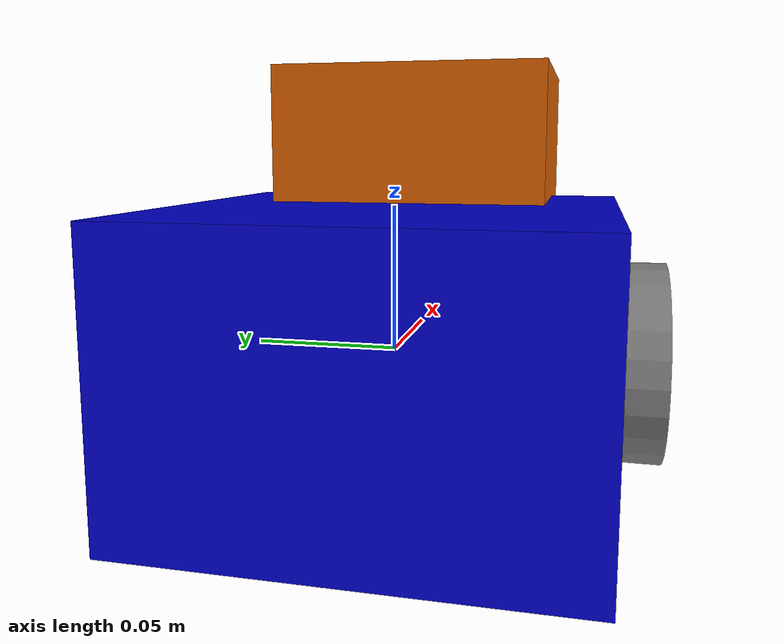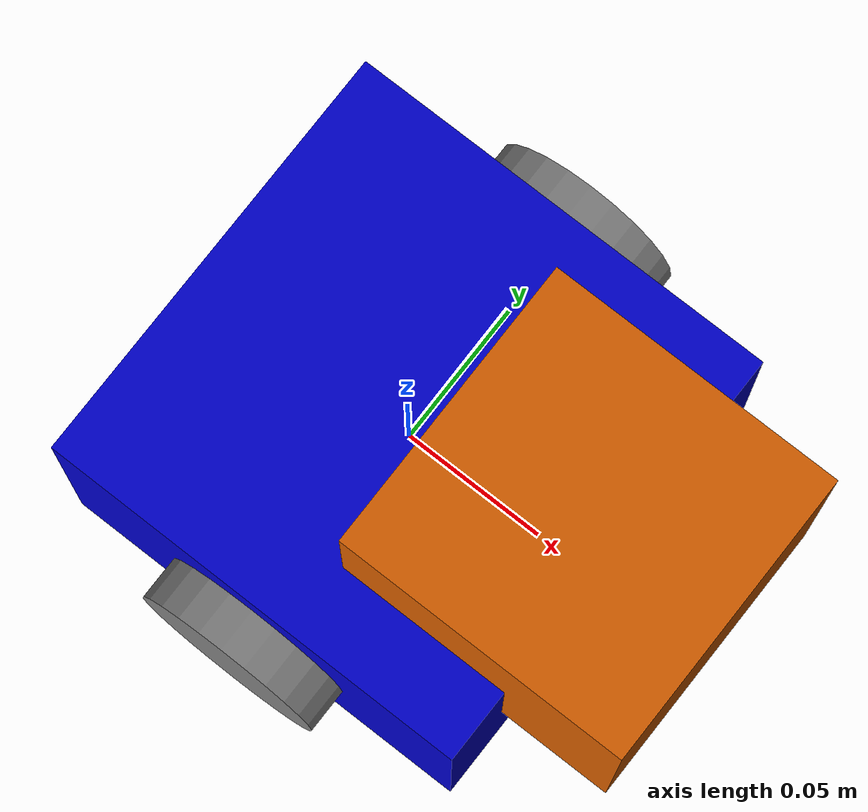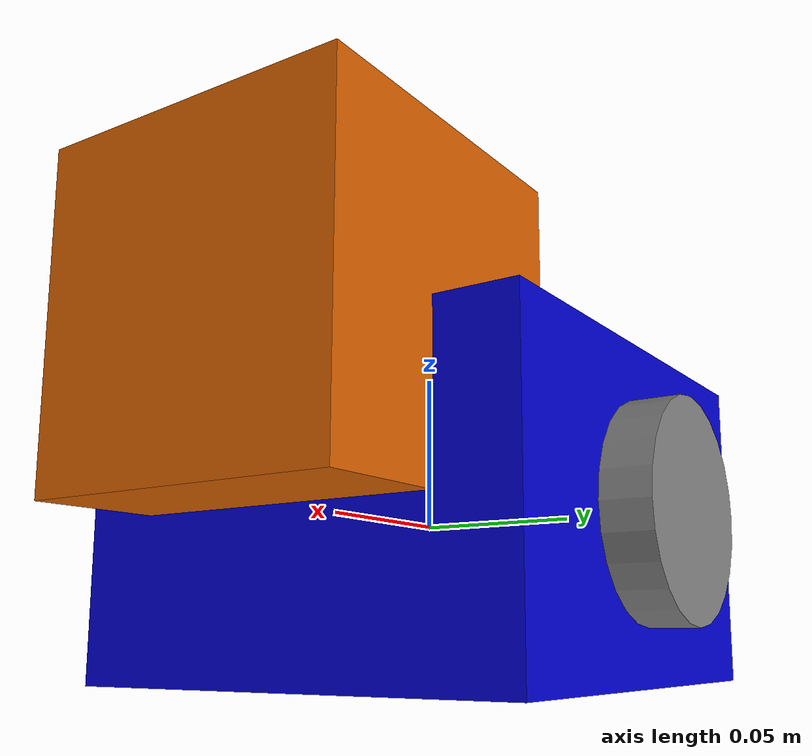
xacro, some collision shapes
<?xml version="1.0" ?>
<robot name="jetbot" xmlns:xacro="http://www.ros.org/wiki/xacro">

  <!-- Constants -->
  <xacro:property name="M_PI" value="3.1415926535897931" />
  <xacro:property name="wheel_radius" value="0.033" />
  <xacro:property name="wheel_width" value="0.02" />
  <xacro:property name="wheel_separation" value="0.16" />
  <xacro:property name="base_length" value="0.15" />
  <xacro:property name="base_width" value="0.15" />
  <xacro:property name="base_height" value="0.1" />

  <!-- Base Link -->
  <link name="base_link">
    <visual>
      <geometry>
        <box size="${base_length} ${base_width} ${base_height}"/>
      </geometry>
      <material name="blue">
        <color rgba="0 0 0.8 1"/>
      </material>
    </visual>
    <collision>
      <geometry>
        <box size="${base_length} ${base_width} ${base_height}"/>
      </geometry>
    </collision>
    <inertial>
      <mass value="1.0" />
      <inertia ixx="0.01" ixy="0.0" ixz="0.0" iyy="0.01" iyz="0.0" izz="0.01" />
    </inertial>
  </link>

  <!-- Camera Mount -->
  <joint name="camera_mount_joint" type="fixed">
    <parent link="base_link"/>
    <child link="camera_link"/>
    <origin xyz="${base_length/2 - 0.01} 0 ${base_height/2}" rpy="0 0 0"/>
  </joint>

  <link name="camera_link">
    <visual>
      <geometry>
        <box size="0.02 0.03 0.03"/>
      </geometry>
      <material name="black">
        <color rgba="0 0 0 1"/>
      </material>
    </visual>
  </link>

  <!-- Wheels -->
  <xacro:macro name="wheel" params="prefix reflect">
    <joint name="${prefix}_wheel_joint" type="continuous">
      <parent link="base_link"/>
      <child link="${prefix}_wheel"/>
      <origin xyz="0 ${reflect*wheel_separation/2} 0" rpy="${-M_PI/2} 0 0"/>
      <axis xyz="0 0 1"/>
    </joint>

    <link name="${prefix}_wheel">
      <visual>
        <geometry>
          <cylinder radius="${wheel_radius}" length="${wheel_width}"/>
        </geometry>
        <material name="gray">
          <color rgba="0.5 0.5 0.5 1"/>
        </material>
      </visual>
      <collision>
        <geometry>
          <cylinder radius="${wheel_radius}" length="${wheel_width}"/>
        </geometry>
      </collision>
      <inertial>
        <mass value="0.1" />
        <inertia ixx="0.001" ixy="0.0" ixz="0.0" iyy="0.001" iyz="0.0" izz="0.001" />
      </inertial>
    </link>

    <!-- Gazebo plugin for wheel -->
    <gazebo reference="${prefix}_wheel">
      <mu1>1.0</mu1>
      <mu2>1.0</mu2>
      <kp>1000000.0</kp>
      <kd>100.0</kd>
      <material>Gazebo/Grey</material>
    </gazebo>
  </xacro:macro>

  <xacro:wheel prefix="left" reflect="1" />
  <xacro:wheel prefix="right" reflect="-1" />

  <!-- Camera Sensor -->
  <gazebo reference="camera_link">
    <sensor type="camera" name="camera_sensor">
      <update_rate>30.0</update_rate>
      <camera name="head">
        <horizontal_fov>1.3962634</horizontal_fov>
        <image>
          <width>640</width>
          <height>480</height>
          <format>R8G8B8</format>
        </image>
        <clip>
          <near>0.02</near>
          <far>300</far>
        </clip>
      </camera>
      <plugin name="camera_controller" filename="libgazebo_ros_camera.so">
        <frame_name>camera_link</frame_name>
        <min_depth>0.1</min_depth>
        <max_depth>10.0</max_depth>
      </plugin>
    </sensor>
  </gazebo>

  <!-- IMU Sensor -->
  <joint name="imu_joint" type="fixed">
    <parent link="base_link"/>
    <child link="imu_link"/>
    <origin xyz="0 0 0" rpy="0 0 0"/>
  </joint>

  <link name="imu_link"/>

  <gazebo reference="imu_link">
    <sensor name="imu_sensor" type="imu">
      <always_on>true</always_on>
      <update_rate>100</update_rate>
      <visualize>true</visualize>
    </sensor>
    <plugin name="imu_plugin" filename="libgazebo_ros_imu.so">
      <frame_name>imu_link</frame_name>
      <body_name>imu_link</body_name>
    </plugin>
  </gazebo>

  <!-- Hokuyo Laser Range Finder -->
  <joint name="hokuyo_joint" type="fixed">
    <origin xyz="${base_length/2 - 0.01} 0 ${base_height/2}" rpy="0 0 0" />
    <parent link="base_link" />
    <child link="hokuyo_link" />
  </joint>

  <link name="hokuyo_link">
    <collision>
      <origin xyz="0 0 0" rpy="0 0 0"/>
      <geometry>
        <box size="0.1 0.1 0.1"/>
      </geometry>
    </collision>
    <visual>
      <origin xyz="0 0 0" rpy="0 0 0"/>
      <geometry>
        <mesh filename="package://gazebo_plugins/test/meshes/hokuyo.dae"/>
      </geometry>
    </visual>
    <inertial>
      <mass value="0.1" />
      <origin xyz="0 0 0" rpy="0 0 0"/>
      <inertia ixx="0.000001" ixy="0" ixz="0" iyy="0.000001" iyz="0" izz="0.000001" />
    </inertial>
  </link>

  <gazebo reference="hokuyo_link">
    <sensor type="ray" name="head_hokuyo_sensor">
      <pose>0 0 0 0 0 0</pose>
      <ray>
        <scan>
          <horizontal>
            <samples>720</samples>
            <resolution>1</resolution>
            <min_angle>-1.570796</min_angle>
            <max_angle>1.570796</max_angle>
          </horizontal>
        </scan>
        <range>
          <min>0.10</min>
          <max>30.0</max>
          <resolution>0.01</resolution>
        </range>
      </ray>
      <plugin name="gazebo_ros_head_hokuyo_controller" filename="libgazebo_ros_laser.so">
        <topicName>/scan</topicName>
        <frameName>hokuyo_link</frameName>
      </plugin>
    </sensor>
  </gazebo>

  <!-- Differential Drive Plugin -->
  <gazebo>
    <plugin name="differential_drive_controller" filename="libgazebo_ros_diff_drive.so">
      <update_rate>100</update_rate>
      <left_joint>left_wheel_joint</left_joint>
      <right_joint>right_wheel_joint</right_joint>
      <wheel_separation>${wheel_separation}</wheel_separation>
      <wheel_diameter>${2 * wheel_radius}</wheel_diameter>
      <max_wheel_torque>20</max_wheel_torque>
      <max_wheel_acceleration>1.0</max_wheel_acceleration>
      <command_topic>cmd_vel</command_topic>
      <odometry_topic>odom</odometry_topic>
      <odometry_frame>odom</odometry_frame>
      <robot_base_frame>base_link</robot_base_frame>
      <publish_odom>true</publish_odom>
      <publish_odom_tf>true</publish_odom_tf>
      <publish_wheel_tf>true</publish_wheel_tf>
    </plugin>
  </gazebo>

</robot>
